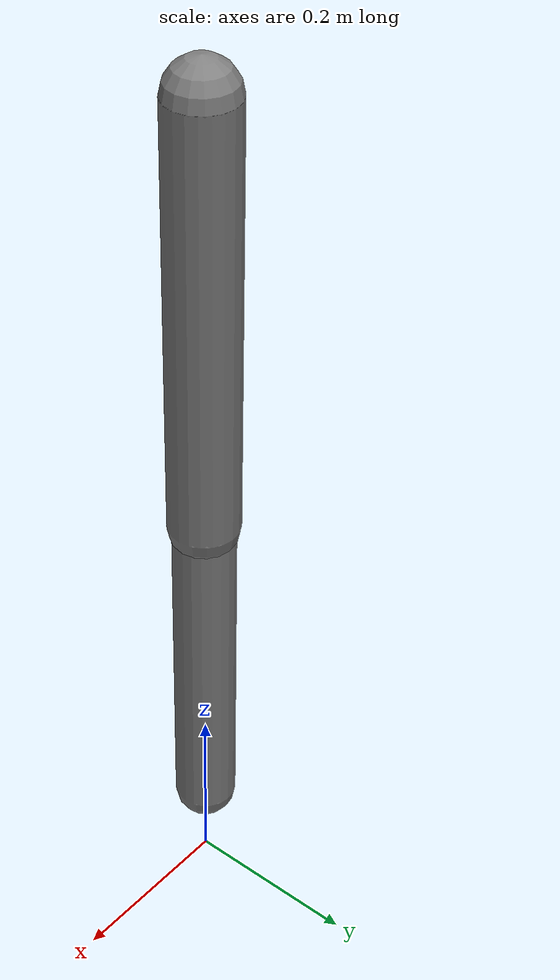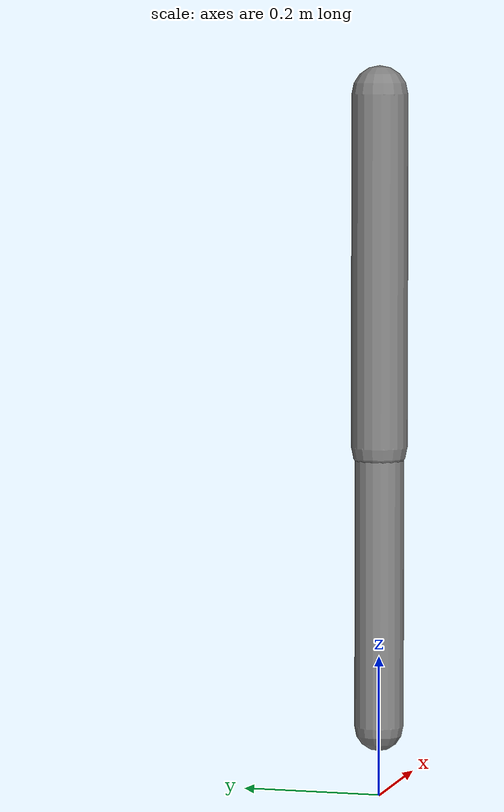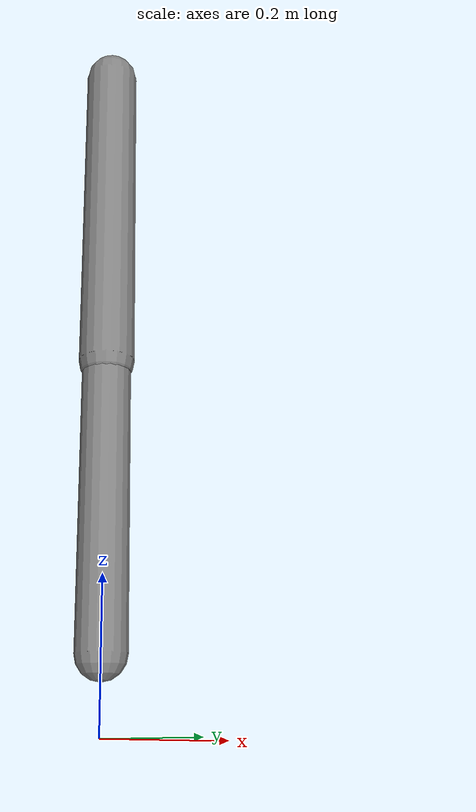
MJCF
<mujoco model="forward_inverse_two_link">
  <compiler angle="radian"/>
  <option gravity="0 0 -9.81"/>
  <worldbody>
    <body pos="0 0 1">
      <joint name="shoulder" axis="0 1 0" damping=".2"/>
      <geom type="capsule" fromto="0 0 0 0 0 -.5" size=".04" mass="1"/>
      <body pos="0 0 -.5">
        <joint name="elbow" axis="0 1 0" damping=".1"/>
        <geom type="capsule" fromto="0 0 0 0 0 -.4" size=".035" mass=".7"/>
      </body>
    </body>
  </worldbody>
</mujoco>
